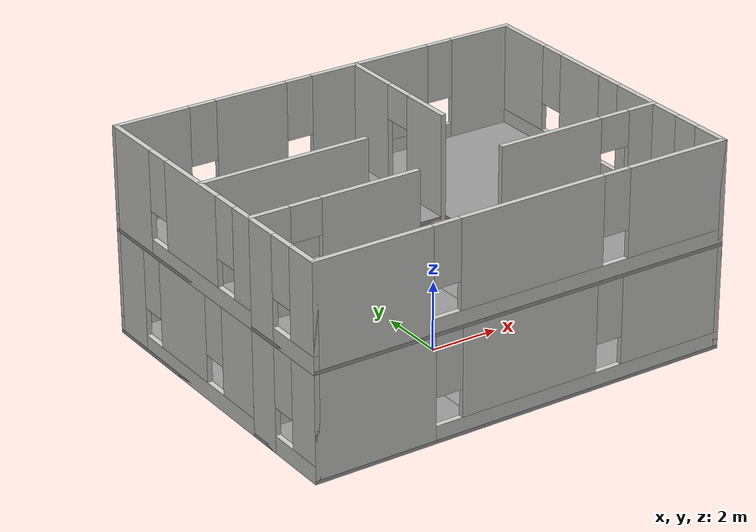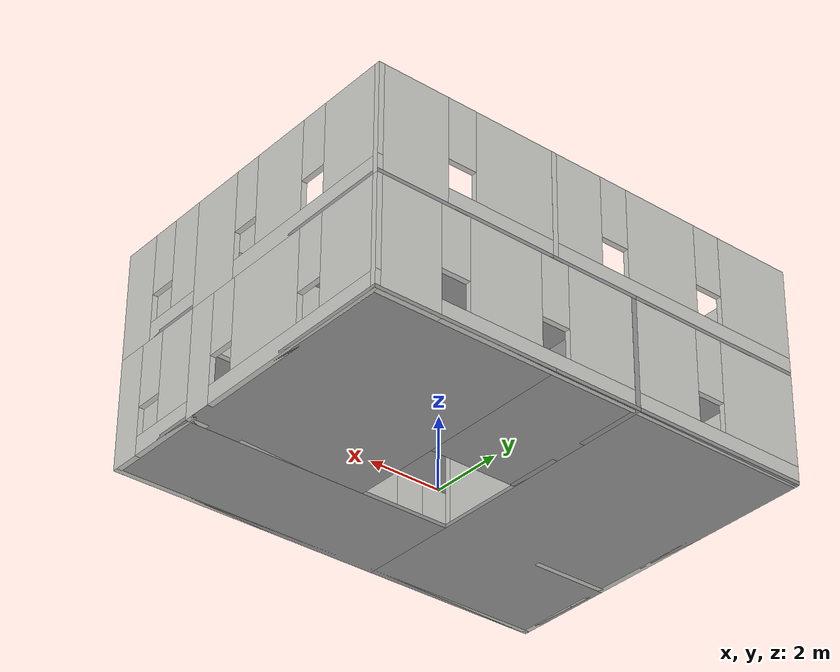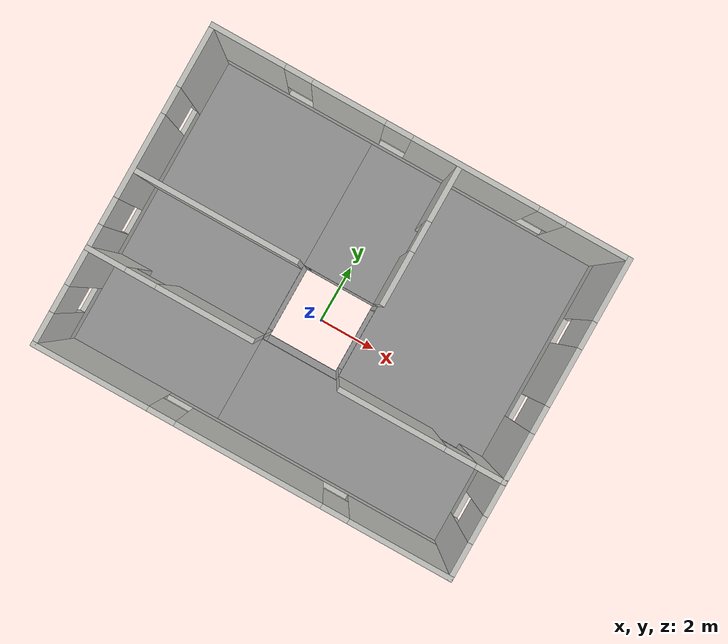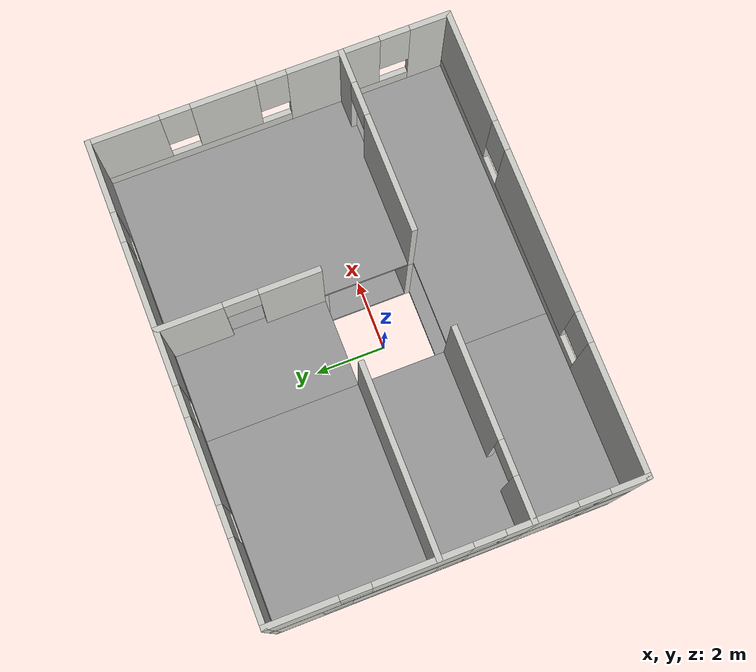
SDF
<?xml version='1.0'?>
<sdf version='1.6'>
  <model name='building_with_elevator'>
    <plugin name="model_transparency" filename="libfloor_transparency_gazebo_model_plugin.so">
      <reference_model>mobile_base</reference_model>
    </plugin>
    <pose frame=''>0 0.6995 0 0 -0 0</pose>
    <link name='Floor_0'>
      <pose frame=''>0 0 0 0 -0 0</pose>
      <visual name='Floor_0_Visual_0'>
        <pose frame=''>-3.7505 0 0.05 0 -0 0</pose>
        <geometry>
          <box>
            <size>5.001 9.60156 0.1</size>
          </box>
        </geometry>
        <material>
          <script>
            <uri>file://media/materials/scripts/gazebo.material</uri>
            <name>Gazebo/Grey</name>
          </script>
          <ambient>1 1 1 1</ambient>
        </material>
      </visual>
      <collision name='Floor_0_Collision_0'>
        <geometry>
          <box>
            <size>5.001 9.60156 0.1</size>
          </box>
        </geometry>
        <pose frame=''>-3.7505 0 0.05 0 -0 0</pose>
      </collision>
      <visual name='Floor_0_Visual_1'>
        <pose frame=''>2.5005 -3.37514 0.05 0 -0 0</pose>
        <geometry>
          <box>
            <size>7.501 2.85128 0.1</size>
          </box>
        </geometry>
        <material>
          <script>
            <uri>file://media/materials/scripts/gazebo.material</uri>
            <name>Gazebo/Grey</name>
          </script>
          <ambient>1 1 1 1</ambient>
        </material>
      </visual>
      <collision name='Floor_0_Collision_1'>
        <geometry>
          <box>
            <size>7.501 2.85128 0.1</size>
          </box>
        </geometry>
        <pose frame=''>2.5005 -3.37514 0.05 0 -0 0</pose>
      </collision>
      <visual name='Floor_0_Visual_2'>
        <pose frame=''>3.7505 1.42564 0.05 0 -0 0</pose>
        <geometry>
          <box>
            <size>5.001 6.75028 0.1</size>
          </box>
        </geometry>
        <material>
          <script>
            <uri>file://media/materials/scripts/gazebo.material</uri>
            <name>Gazebo/Grey</name>
          </script>
          <ambient>1 1 1 1</ambient>
        </material>
      </visual>
      <collision name='Floor_0_Collision_2'>
        <geometry>
          <box>
            <size>5.001 6.75028 0.1</size>
          </box>
        </geometry>
        <pose frame=''>3.7505 1.42564 0.05 0 -0 0</pose>
      </collision>
      <visual name='Floor_0_Visual_3'>
        <pose frame=''>0 2.67564 0.05 0 -0 0</pose>
        <geometry>
          <box>
            <size>2.5 4.25028 0.1</size>
          </box>
        </geometry>
        <material>
          <script>
            <uri>file://media/materials/scripts/gazebo.material</uri>
            <name>Gazebo/Grey</name>
          </script>
          <ambient>1 1 1 1</ambient>
        </material>
      </visual>
      <collision name='Floor_0_Collision_3'>
        <geometry>
          <box>
            <size>2.5 4.25028 0.1</size>
          </box>
        </geometry>
        <pose frame=''>0 2.67564 0.05 0 -0 0</pose>
      </collision>
    </link>
    <link name='Wall_1'>
      <pose frame=''>3.75 -1.8755 0 0 -0 3.14159</pose>
      <visual name='Wall_1_Visual_0'>
        <pose frame=''>-2.22551 0 1.5 0 -0 0</pose>
        <geometry>
          <box>
            <size>0.550979 0.15 3</size>
          </box>
        </geometry>
        <material>
          <script>
            <uri>file://media/materials/scripts/gazebo.material</uri>
            <name>Gazebo/CeilingTiled</name>
          </script>
          <ambient>1 1 1 1</ambient>
        </material>
      </visual>
      <collision name='Wall_1_Collision_0'>
        <geometry>
          <box>
            <size>0.550979 0.15 3</size>
          </box>
        </geometry>
        <pose frame=''>-2.22551 0 1.5 0 -0 0</pose>
      </collision>
      <visual name='Wall_1_Visual_1'>
        <pose frame=''>0.725489 0 1.5 0 -0 0</pose>
        <geometry>
          <box>
            <size>3.55102 0.15 3</size>
          </box>
        </geometry>
        <material>
          <script>
            <uri>file://media/materials/scripts/gazebo.material</uri>
            <name>Gazebo/CeilingTiled</name>
          </script>
          <ambient>1 1 1 1</ambient>
        </material>
      </visual>
      <collision name='Wall_1_Collision_1'>
        <geometry>
          <box>
            <size>3.55102 0.15 3</size>
          </box>
        </geometry>
        <pose frame=''>0.725489 0 1.5 0 -0 0</pose>
      </collision>
      <visual name='Wall_1_Visual_2'>
        <pose frame=''>-1.50002 0 2.5 0 -0 0</pose>
        <geometry>
          <box>
            <size>0.9 0.15 1</size>
          </box>
        </geometry>
        <material>
          <script>
            <uri>file://media/materials/scripts/gazebo.material</uri>
            <name>Gazebo/CeilingTiled</name>
          </script>
          <ambient>1 1 1 1</ambient>
        </material>
      </visual>
      <collision name='Wall_1_Collision_2'>
        <geometry>
          <box>
            <size>0.9 0.15 1</size>
          </box>
        </geometry>
        <pose frame=''>-1.50002 0 2.5 0 -0 0</pose>
      </collision>
    </link>
    <link name='Wall_12'>
      <pose frame=''>6.176 1.4245 0 0 -0 1.5708</pose>
      <visual name='Wall_12_Visual_0'>
        <pose frame=''>-2.95992 0 1.5 0 -0 0</pose>
        <geometry>
          <box>
            <size>0.830166 0.15 3</size>
          </box>
        </geometry>
        <material>
          <script>
            <uri>file://media/materials/scripts/gazebo.material</uri>
            <name>Gazebo/CeilingTiled</name>
          </script>
          <ambient>1 1 1 1</ambient>
        </material>
      </visual>
      <collision name='Wall_12_Collision_0'>
        <geometry>
          <box>
            <size>0.830166 0.15 3</size>
          </box>
        </geometry>
        <pose frame=''>-2.95992 0 1.5 0 -0 0</pose>
      </collision>
      <visual name='Wall_12_Visual_1'>
        <pose frame=''>0.415083 0 0.25 0 -0 0</pose>
        <geometry>
          <box>
            <size>5.91983 0.15 0.5</size>
          </box>
        </geometry>
        <material>
          <script>
            <uri>file://media/materials/scripts/gazebo.material</uri>
            <name>Gazebo/CeilingTiled</name>
          </script>
          <ambient>1 1 1 1</ambient>
        </material>
      </visual>
      <collision name='Wall_12_Collision_1'>
        <geometry>
          <box>
            <size>5.91983 0.15 0.5</size>
          </box>
        </geometry>
        <pose frame=''>0.415083 0 0.25 0 -0 0</pose>
      </collision>
      <visual name='Wall_12_Visual_2'>
        <pose frame=''>-0.543077 0 1.75 0 -0 0</pose>
        <geometry>
          <box>
            <size>2.40351 0.15 2.5</size>
          </box>
        </geometry>
        <material>
          <script>
            <uri>file://media/materials/scripts/gazebo.material</uri>
            <name>Gazebo/CeilingTiled</name>
          </script>
          <ambient>1 1 1 1</ambient>
        </material>
      </visual>
      <collision name='Wall_12_Collision_2'>
        <geometry>
          <box>
            <size>2.40351 0.15 2.5</size>
          </box>
        </geometry>
        <pose frame=''>-0.543077 0 1.75 0 -0 0</pose>
      </collision>
      <visual name='Wall_12_Visual_3'>
        <pose frame=''>2.41684 0 1.75 0 -0 0</pose>
        <geometry>
          <box>
            <size>1.91632 0.15 2.5</size>
          </box>
        </geometry>
        <material>
          <script>
            <uri>file://media/materials/scripts/gazebo.material</uri>
            <name>Gazebo/CeilingTiled</name>
          </script>
          <ambient>1 1 1 1</ambient>
        </material>
      </visual>
      <collision name='Wall_12_Collision_3'>
        <geometry>
          <box>
            <size>1.91632 0.15 2.5</size>
          </box>
        </geometry>
        <pose frame=''>2.41684 0 1.75 0 -0 0</pose>
      </collision>
      <visual name='Wall_12_Visual_4'>
        <pose frame=''>-2.14483 0 2.15 0 -0 0</pose>
        <geometry>
          <box>
            <size>0.8 0.15 1.7</size>
          </box>
        </geometry>
        <material>
          <script>
            <uri>file://media/materials/scripts/gazebo.material</uri>
            <name>Gazebo/CeilingTiled</name>
          </script>
          <ambient>1 1 1 1</ambient>
        </material>
      </visual>
      <collision name='Wall_12_Collision_4'>
        <geometry>
          <box>
            <size>0.8 0.15 1.7</size>
          </box>
        </geometry>
        <pose frame=''>-2.14483 0 2.15 0 -0 0</pose>
      </collision>
      <visual name='Wall_12_Visual_5'>
        <pose frame=''>1.05868 0 2.15 0 -0 0</pose>
        <geometry>
          <box>
            <size>0.8 0.15 1.7</size>
          </box>
        </geometry>
        <material>
          <script>
            <uri>file://media/materials/scripts/gazebo.material</uri>
            <name>Gazebo/CeilingTiled</name>
          </script>
          <ambient>1 1 1 1</ambient>
        </material>
      </visual>
      <collision name='Wall_12_Collision_5'>
        <geometry>
          <box>
            <size>0.8 0.15 1.7</size>
          </box>
        </geometry>
        <pose frame=''>1.05868 0 2.15 0 -0 0</pose>
      </collision>
    </link>
    <link name='Wall_13'>
      <pose frame=''>0 4.7245 0 0 -0 3.14159</pose>
      <visual name='Wall_13_Visual_0'>
        <pose frame=''>-5.3579 0 1.5 0 -0 0</pose>
        <geometry>
          <box>
            <size>1.7862 0.15 3</size>
          </box>
        </geometry>
        <material>
          <script>
            <uri>file://media/materials/scripts/gazebo.material</uri>
            <name>Gazebo/CeilingTiled</name>
          </script>
          <ambient>1 1 1 1</ambient>
        </material>
      </visual>
      <collision name='Wall_13_Collision_0'>
        <geometry>
          <box>
            <size>1.7862 0.15 3</size>
          </box>
        </geometry>
        <pose frame=''>-5.3579 0 1.5 0 -0 0</pose>
      </collision>
      <visual name='Wall_13_Visual_1'>
        <pose frame=''>0.893098 0 0.25 0 -0 0</pose>
        <geometry>
          <box>
            <size>10.7158 0.15 0.5</size>
          </box>
        </geometry>
        <material>
          <script>
            <uri>file://media/materials/scripts/gazebo.material</uri>
            <name>Gazebo/CeilingTiled</name>
          </script>
          <ambient>1 1 1 1</ambient>
        </material>
      </visual>
      <collision name='Wall_13_Collision_1'>
        <geometry>
          <box>
            <size>10.7158 0.15 0.5</size>
          </box>
        </geometry>
        <pose frame=''>0.893098 0 0.25 0 -0 0</pose>
      </collision>
      <visual name='Wall_13_Visual_2'>
        <pose frame=''>-2.64079 0 1.75 0 -0 0</pose>
        <geometry>
          <box>
            <size>2.04803 0.15 2.5</size>
          </box>
        </geometry>
        <material>
          <script>
            <uri>file://media/materials/scripts/gazebo.material</uri>
            <name>Gazebo/CeilingTiled</name>
          </script>
          <ambient>1 1 1 1</ambient>
        </material>
      </visual>
      <collision name='Wall_13_Collision_2'>
        <geometry>
          <box>
            <size>2.04803 0.15 2.5</size>
          </box>
        </geometry>
        <pose frame=''>-2.64079 0 1.75 0 -0 0</pose>
      </collision>
      <visual name='Wall_13_Visual_3'>
        <pose frame=''>1.14669 0 1.75 0 -0 0</pose>
        <geometry>
          <box>
            <size>3.92694 0.15 2.5</size>
          </box>
        </geometry>
        <material>
          <script>
            <uri>file://media/materials/scripts/gazebo.material</uri>
            <name>Gazebo/CeilingTiled</name>
          </script>
          <ambient>1 1 1 1</ambient>
        </material>
      </visual>
      <collision name='Wall_13_Collision_3'>
        <geometry>
          <box>
            <size>3.92694 0.15 2.5</size>
          </box>
        </geometry>
        <pose frame=''>1.14669 0 1.75 0 -0 0</pose>
      </collision>
      <visual name='Wall_13_Visual_4'>
        <pose frame=''>5.08058 0 1.75 0 -0 0</pose>
        <geometry>
          <box>
            <size>2.34084 0.15 2.5</size>
          </box>
        </geometry>
        <material>
          <script>
            <uri>file://media/materials/scripts/gazebo.material</uri>
            <name>Gazebo/CeilingTiled</name>
          </script>
          <ambient>1 1 1 1</ambient>
        </material>
      </visual>
      <collision name='Wall_13_Collision_4'>
        <geometry>
          <box>
            <size>2.34084 0.15 2.5</size>
          </box>
        </geometry>
        <pose frame=''>5.08058 0 1.75 0 -0 0</pose>
      </collision>
      <visual name='Wall_13_Visual_5'>
        <pose frame=''>-4.0648 0 2.15 0 -0 0</pose>
        <geometry>
          <box>
            <size>0.8 0.15 1.7</size>
          </box>
        </geometry>
        <material>
          <script>
            <uri>file://media/materials/scripts/gazebo.material</uri>
            <name>Gazebo/CeilingTiled</name>
          </script>
          <ambient>1 1 1 1</ambient>
        </material>
      </visual>
      <collision name='Wall_13_Collision_5'>
        <geometry>
          <box>
            <size>0.8 0.15 1.7</size>
          </box>
        </geometry>
        <pose frame=''>-4.0648 0 2.15 0 -0 0</pose>
      </collision>
      <visual name='Wall_13_Visual_6'>
        <pose frame=''>-1.21677 0 2.15 0 -0 0</pose>
        <geometry>
          <box>
            <size>0.8 0.15 1.7</size>
          </box>
        </geometry>
        <material>
          <script>
            <uri>file://media/materials/scripts/gazebo.material</uri>
            <name>Gazebo/CeilingTiled</name>
          </script>
          <ambient>1 1 1 1</ambient>
        </material>
      </visual>
      <collision name='Wall_13_Collision_6'>
        <geometry>
          <box>
            <size>0.8 0.15 1.7</size>
          </box>
        </geometry>
        <pose frame=''>-1.21677 0 2.15 0 -0 0</pose>
      </collision>
      <visual name='Wall_13_Visual_7'>
        <pose frame=''>3.51016 0 2.15 0 -0 0</pose>
        <geometry>
          <box>
            <size>0.8 0.15 1.7</size>
          </box>
        </geometry>
        <material>
          <script>
            <uri>file://media/materials/scripts/gazebo.material</uri>
            <name>Gazebo/CeilingTiled</name>
          </script>
          <ambient>1 1 1 1</ambient>
        </material>
      </visual>
      <collision name='Wall_13_Collision_7'>
        <geometry>
          <box>
            <size>0.8 0.15 1.7</size>
          </box>
        </geometry>
        <pose frame=''>3.51016 0 2.15 0 -0 0</pose>
      </collision>
    </link>
    <link name='Wall_14'>
      <pose frame=''>-6.176 1.4245 0 0 0 -1.5708</pose>
      <visual name='Wall_14_Visual_0'>
        <pose frame=''>-2.68372 0 1.5 0 -0 0</pose>
        <geometry>
          <box>
            <size>1.38232 0.15 3</size>
          </box>
        </geometry>
        <material>
          <script>
            <uri>file://media/materials/scripts/gazebo.material</uri>
            <name>Gazebo/CeilingTiled</name>
          </script>
          <ambient>1 1 1 1</ambient>
        </material>
      </visual>
      <collision name='Wall_14_Collision_0'>
        <geometry>
          <box>
            <size>1.38232 0.15 3</size>
          </box>
        </geometry>
        <pose frame=''>-2.68372 0 1.5 0 -0 0</pose>
      </collision>
      <visual name='Wall_14_Visual_1'>
        <pose frame=''>0.691162 0 0.25 0 -0 0</pose>
        <geometry>
          <box>
            <size>5.36744 0.15 0.5</size>
          </box>
        </geometry>
        <material>
          <script>
            <uri>file://media/materials/scripts/gazebo.material</uri>
            <name>Gazebo/CeilingTiled</name>
          </script>
          <ambient>1 1 1 1</ambient>
        </material>
      </visual>
      <collision name='Wall_14_Collision_1'>
        <geometry>
          <box>
            <size>5.36744 0.15 0.5</size>
          </box>
        </geometry>
        <pose frame=''>0.691162 0 0.25 0 -0 0</pose>
      </collision>
      <visual name='Wall_14_Visual_2'>
        <pose frame=''>-0.040189 0 1.75 0 -0 0</pose>
        <geometry>
          <box>
            <size>2.30474 0.15 2.5</size>
          </box>
        </geometry>
        <material>
          <script>
            <uri>file://media/materials/scripts/gazebo.material</uri>
            <name>Gazebo/CeilingTiled</name>
          </script>
          <ambient>1 1 1 1</ambient>
        </material>
      </visual>
      <collision name='Wall_14_Collision_2'>
        <geometry>
          <box>
            <size>2.30474 0.15 2.5</size>
          </box>
        </geometry>
        <pose frame=''>-0.040189 0 1.75 0 -0 0</pose>
      </collision>
      <visual name='Wall_14_Visual_3'>
        <pose frame=''>2.64353 0 1.75 0 -0 0</pose>
        <geometry>
          <box>
            <size>1.4627 0.15 2.5</size>
          </box>
        </geometry>
        <material>
          <script>
            <uri>file://media/materials/scripts/gazebo.material</uri>
            <name>Gazebo/CeilingTiled</name>
          </script>
          <ambient>1 1 1 1</ambient>
        </material>
      </visual>
      <collision name='Wall_14_Collision_3'>
        <geometry>
          <box>
            <size>1.4627 0.15 2.5</size>
          </box>
        </geometry>
        <pose frame=''>2.64353 0 1.75 0 -0 0</pose>
      </collision>
      <visual name='Wall_14_Visual_4'>
        <pose frame=''>-1.59256 0 2.15 0 -0 0</pose>
        <geometry>
          <box>
            <size>0.8 0.15 1.7</size>
          </box>
        </geometry>
        <material>
          <script>
            <uri>file://media/materials/scripts/gazebo.material</uri>
            <name>Gazebo/CeilingTiled</name>
          </script>
          <ambient>1 1 1 1</ambient>
        </material>
      </visual>
      <collision name='Wall_14_Collision_4'>
        <geometry>
          <box>
            <size>0.8 0.15 1.7</size>
          </box>
        </geometry>
        <pose frame=''>-1.59256 0 2.15 0 -0 0</pose>
      </collision>
      <visual name='Wall_14_Visual_5'>
        <pose frame=''>1.51218 0 2.15 0 -0 0</pose>
        <geometry>
          <box>
            <size>0.8 0.15 1.7</size>
          </box>
        </geometry>
        <material>
          <script>
            <uri>file://media/materials/scripts/gazebo.material</uri>
            <name>Gazebo/CeilingTiled</name>
          </script>
          <ambient>1 1 1 1</ambient>
        </material>
      </visual>
      <collision name='Wall_14_Collision_5'>
        <geometry>
          <box>
            <size>0.8 0.15 1.7</size>
          </box>
        </geometry>
        <pose frame=''>1.51218 0 2.15 0 -0 0</pose>
      </collision>
    </link>
    <link name='Wall_16'>
      <pose frame=''>-1.175 2.6755 0 0 -0 1.5708</pose>
      <visual name='Wall_16_Visual_0'>
        <pose frame=''>-1.3834 0 1.5 0 -0 0</pose>
        <geometry>
          <box>
            <size>1.48321 0.15 3</size>
          </box>
        </geometry>
        <material>
          <script>
            <uri>file://media/materials/scripts/gazebo.material</uri>
            <name>Gazebo/Grey</name>
          </script>
          <ambient>1 1 1 1</ambient>
        </material>
      </visual>
      <collision name='Wall_16_Collision_0'>
        <geometry>
          <box>
            <size>1.48321 0.15 3</size>
          </box>
        </geometry>
        <pose frame=''>-1.3834 0 1.5 0 -0 0</pose>
      </collision>
      <visual name='Wall_16_Visual_1'>
        <pose frame=''>1.1916 0 1.5 0 -0 0</pose>
        <geometry>
          <box>
            <size>1.86679 0.15 3</size>
          </box>
        </geometry>
        <material>
          <script>
            <uri>file://media/materials/scripts/gazebo.material</uri>
            <name>Gazebo/Grey</name>
          </script>
          <ambient>1 1 1 1</ambient>
        </material>
      </visual>
      <collision name='Wall_16_Collision_1'>
        <geometry>
          <box>
            <size>1.86679 0.15 3</size>
          </box>
        </geometry>
        <pose frame=''>1.1916 0 1.5 0 -0 0</pose>
      </collision>
      <visual name='Wall_16_Visual_2'>
        <pose frame=''>-0.191795 0 2.5 0 -0 0</pose>
        <geometry>
          <box>
            <size>0.9 0.15 1</size>
          </box>
        </geometry>
        <material>
          <script>
            <uri>file://media/materials/scripts/gazebo.material</uri>
            <name>Gazebo/Grey</name>
          </script>
          <ambient>1 1 1 1</ambient>
        </material>
      </visual>
      <collision name='Wall_16_Collision_2'>
        <geometry>
          <box>
            <size>0.9 0.15 1</size>
          </box>
        </geometry>
        <pose frame=''>-0.191795 0 2.5 0 -0 0</pose>
      </collision>
    </link>
    <link name='Wall_18'>
      <collision name='Wall_18_Collision'>
        <geometry>
          <box>
            <size>5 0.15 3</size>
          </box>
        </geometry>
        <pose frame=''>0 0 1.5 0 -0 0</pose>
      </collision>
      <visual name='Wall_18_Visual'>
        <pose frame=''>0 0 1.5 0 -0 0</pose>
        <geometry>
          <box>
            <size>5 0.15 3</size>
          </box>
        </geometry>
        <material>
          <script>
            <uri>file://media/materials/scripts/gazebo.material</uri>
            <name>Gazebo/CeilingTiled</name>
          </script>
          <ambient>1 1 1 1</ambient>
        </material>
      </visual>
      <pose frame=''>3.748 0.4825 0 0 -0 0</pose>
    </link>
    <link name='Floor_1'>
      <pose frame=''>0 0 3 0 -0 0</pose>
      <visual name='Floor_1_Visual_0'>
        <pose frame=''>-3.7505 0 0.05 0 -0 0</pose>
        <geometry>
          <box>
            <size>5.001 9.60156 0.1</size>
          </box>
        </geometry>
        <material>
          <script>
            <uri>file://media/materials/scripts/gazebo.material</uri>
            <name>Gazebo/Grey</name>
          </script>
          <ambient>1 1 1 1</ambient>
        </material>
      </visual>
      <collision name='Floor_1_Collision_0'>
        <geometry>
          <box>
            <size>5.001 9.60156 0.1</size>
          </box>
        </geometry>
        <pose frame=''>-3.7505 0 0.05 0 -0 0</pose>
      </collision>
      <visual name='Floor_1_Visual_1'>
        <pose frame=''>2.5005 -3.37514 0.05 0 -0 0</pose>
        <geometry>
          <box>
            <size>7.501 2.85128 0.1</size>
          </box>
        </geometry>
        <material>
          <script>
            <uri>file://media/materials/scripts/gazebo.material</uri>
            <name>Gazebo/Grey</name>
          </script>
          <ambient>1 1 1 1</ambient>
        </material>
      </visual>
      <collision name='Floor_1_Collision_1'>
        <geometry>
          <box>
            <size>7.501 2.85128 0.1</size>
          </box>
        </geometry>
        <pose frame=''>2.5005 -3.37514 0.05 0 -0 0</pose>
      </collision>
      <visual name='Floor_1_Visual_2'>
        <pose frame=''>3.7505 1.42564 0.05 0 -0 0</pose>
        <geometry>
          <box>
            <size>5.001 6.75028 0.1</size>
          </box>
        </geometry>
        <material>
          <script>
            <uri>file://media/materials/scripts/gazebo.material</uri>
            <name>Gazebo/Grey</name>
          </script>
          <ambient>1 1 1 1</ambient>
        </material>
      </visual>
      <collision name='Floor_1_Collision_2'>
        <geometry>
          <box>
            <size>5.001 6.75028 0.1</size>
          </box>
        </geometry>
        <pose frame=''>3.7505 1.42564 0.05 0 -0 0</pose>
      </collision>
      <visual name='Floor_1_Visual_3'>
        <pose frame=''>0 2.67564 0.05 0 -0 0</pose>
        <geometry>
          <box>
            <size>2.5 4.25028 0.1</size>
          </box>
        </geometry>
        <material>
          <script>
            <uri>file://media/materials/scripts/gazebo.material</uri>
            <name>Gazebo/Grey</name>
          </script>
          <ambient>1 1 1 1</ambient>
        </material>
      </visual>
      <collision name='Floor_1_Collision_3'>
        <geometry>
          <box>
            <size>2.5 4.25028 0.1</size>
          </box>
        </geometry>
        <pose frame=''>0 2.67564 0.05 0 -0 0</pose>
      </collision>
    </link>
    <link name='Wall_21'>
      <pose frame=''>3.75 -1.8755 3 0 -0 3.14159</pose>
      <visual name='Wall_21_Visual_0'>
        <pose frame=''>-2.03547 0 1.5 0 -0 0</pose>
        <geometry>
          <box>
            <size>0.931051 0.15 3</size>
          </box>
        </geometry>
        <material>
          <script>
            <uri>file://media/materials/scripts/gazebo.material</uri>
            <name>Gazebo/CeilingTiled</name>
          </script>
          <ambient>1 1 1 1</ambient>
        </material>
      </visual>
      <collision name='Wall_21_Collision_0'>
        <geometry>
          <box>
            <size>0.931051 0.15 3</size>
          </box>
        </geometry>
        <pose frame=''>-2.03547 0 1.5 0 -0 0</pose>
      </collision>
      <visual name='Wall_21_Visual_1'>
        <pose frame=''>0.915525 0 1.5 0 -0 0</pose>
        <geometry>
          <box>
            <size>3.17095 0.15 3</size>
          </box>
        </geometry>
        <material>
          <script>
            <uri>file://media/materials/scripts/gazebo.material</uri>
            <name>Gazebo/CeilingTiled</name>
          </script>
          <ambient>1 1 1 1</ambient>
        </material>
      </visual>
      <collision name='Wall_21_Collision_1'>
        <geometry>
          <box>
            <size>3.17095 0.15 3</size>
          </box>
        </geometry>
        <pose frame=''>0.915525 0 1.5 0 -0 0</pose>
      </collision>
      <visual name='Wall_21_Visual_2'>
        <pose frame=''>-1.11995 0 2.5 0 -0 0</pose>
        <geometry>
          <box>
            <size>0.9 0.15 1</size>
          </box>
        </geometry>
        <material>
          <script>
            <uri>file://media/materials/scripts/gazebo.material</uri>
            <name>Gazebo/CeilingTiled</name>
          </script>
          <ambient>1 1 1 1</ambient>
        </material>
      </visual>
      <collision name='Wall_21_Collision_2'>
        <geometry>
          <box>
            <size>0.9 0.15 1</size>
          </box>
        </geometry>
        <pose frame=''>-1.11995 0 2.5 0 -0 0</pose>
      </collision>
    </link>
    <link name='Wall_22'>
      <pose frame=''>-3.751 -1.8755 3 0 -0 3.14159</pose>
      <visual name='Wall_22_Visual_0'>
        <pose frame=''>-1.04559 0 1.5 0 -0 0</pose>
        <geometry>
          <box>
            <size>2.90882 0.15 3</size>
          </box>
        </geometry>
        <material>
          <script>
            <uri>file://media/materials/scripts/gazebo.material</uri>
            <name>Gazebo/CeilingTiled</name>
          </script>
          <ambient>1 1 1 1</ambient>
        </material>
      </visual>
      <collision name='Wall_22_Collision_0'>
        <geometry>
          <box>
            <size>2.90882 0.15 3</size>
          </box>
        </geometry>
        <pose frame=''>-1.04559 0 1.5 0 -0 0</pose>
      </collision>
      <visual name='Wall_22_Visual_1'>
        <pose frame=''>1.90441 0 1.5 0 -0 0</pose>
        <geometry>
          <box>
            <size>1.19118 0.15 3</size>
          </box>
        </geometry>
        <material>
          <script>
            <uri>file://media/materials/scripts/gazebo.material</uri>
            <name>Gazebo/CeilingTiled</name>
          </script>
          <ambient>1 1 1 1</ambient>
        </material>
      </visual>
      <collision name='Wall_22_Collision_1'>
        <geometry>
          <box>
            <size>1.19118 0.15 3</size>
          </box>
        </geometry>
        <pose frame=''>1.90441 0 1.5 0 -0 0</pose>
      </collision>
      <visual name='Wall_22_Visual_2'>
        <pose frame=''>0.858818 0 2.5 0 -0 0</pose>
        <geometry>
          <box>
            <size>0.9 0.15 1</size>
          </box>
        </geometry>
        <material>
          <script>
            <uri>file://media/materials/scripts/gazebo.material</uri>
            <name>Gazebo/CeilingTiled</name>
          </script>
          <ambient>1 1 1 1</ambient>
        </material>
      </visual>
      <collision name='Wall_22_Collision_2'>
        <geometry>
          <box>
            <size>0.9 0.15 1</size>
          </box>
        </geometry>
        <pose frame=''>0.858818 0 2.5 0 -0 0</pose>
      </collision>
    </link>
    <link name='Wall_23'>
      <pose frame=''>-6.176 -3.3005 3 0 0 -1.5708</pose>
      <visual name='Wall_23_Visual_0'>
        <pose frame=''>-0.914344 0 1.5 0 -0 0</pose>
        <geometry>
          <box>
            <size>1.17131 0.15 3</size>
          </box>
        </geometry>
        <material>
          <script>
            <uri>file://media/materials/scripts/gazebo.material</uri>
            <name>Gazebo/CeilingTiled</name>
          </script>
          <ambient>1 1 1 1</ambient>
        </material>
      </visual>
      <collision name='Wall_23_Collision_0'>
        <geometry>
          <box>
            <size>1.17131 0.15 3</size>
          </box>
        </geometry>
        <pose frame=''>-0.914344 0 1.5 0 -0 0</pose>
      </collision>
      <visual name='Wall_23_Visual_1'>
        <pose frame=''>0.585656 0 0.25 0 -0 0</pose>
        <geometry>
          <box>
            <size>1.82869 0.15 0.5</size>
          </box>
        </geometry>
        <material>
          <script>
            <uri>file://media/materials/scripts/gazebo.material</uri>
            <name>Gazebo/CeilingTiled</name>
          </script>
          <ambient>1 1 1 1</ambient>
        </material>
      </visual>
      <collision name='Wall_23_Collision_1'>
        <geometry>
          <box>
            <size>1.82869 0.15 0.5</size>
          </box>
        </geometry>
        <pose frame=''>0.585656 0 0.25 0 -0 0</pose>
      </collision>
      <visual name='Wall_23_Visual_2'>
        <pose frame=''>0.985656 0 1.75 0 -0 0</pose>
        <geometry>
          <box>
            <size>1.02869 0.15 2.5</size>
          </box>
        </geometry>
        <material>
          <script>
            <uri>file://media/materials/scripts/gazebo.material</uri>
            <name>Gazebo/CeilingTiled</name>
          </script>
          <ambient>1 1 1 1</ambient>
        </material>
      </visual>
      <collision name='Wall_23_Collision_2'>
        <geometry>
          <box>
            <size>1.02869 0.15 2.5</size>
          </box>
        </geometry>
        <pose frame=''>0.985656 0 1.75 0 -0 0</pose>
      </collision>
      <visual name='Wall_23_Visual_3'>
        <pose frame=''>0.071312 0 2.15 0 -0 0</pose>
        <geometry>
          <box>
            <size>0.8 0.15 1.7</size>
          </box>
        </geometry>
        <material>
          <script>
            <uri>file://media/materials/scripts/gazebo.material</uri>
            <name>Gazebo/CeilingTiled</name>
          </script>
          <ambient>1 1 1 1</ambient>
        </material>
      </visual>
      <collision name='Wall_23_Collision_3'>
        <geometry>
          <box>
            <size>0.8 0.15 1.7</size>
          </box>
        </geometry>
        <pose frame=''>0.071312 0 2.15 0 -0 0</pose>
      </collision>
    </link>
    <link name='Wall_24'>
      <pose frame=''>0 -4.7255 3 0 -0 0</pose>
      <visual name='Wall_24_Visual_0'>
        <pose frame=''>-4.52369 0 1.5 0 -0 0</pose>
        <geometry>
          <box>
            <size>3.45462 0.15 3</size>
          </box>
        </geometry>
        <material>
          <script>
            <uri>file://media/materials/scripts/gazebo.material</uri>
            <name>Gazebo/CeilingTiled</name>
          </script>
          <ambient>1 1 1 1</ambient>
        </material>
      </visual>
      <collision name='Wall_24_Collision_0'>
        <geometry>
          <box>
            <size>3.45462 0.15 3</size>
          </box>
        </geometry>
        <pose frame=''>-4.52369 0 1.5 0 -0 0</pose>
      </collision>
      <visual name='Wall_24_Visual_1'>
        <pose frame=''>1.72731 0 0.25 0 -0 0</pose>
        <geometry>
          <box>
            <size>9.04738 0.15 0.5</size>
          </box>
        </geometry>
        <material>
          <script>
            <uri>file://media/materials/scripts/gazebo.material</uri>
            <name>Gazebo/CeilingTiled</name>
          </script>
          <ambient>1 1 1 1</ambient>
        </material>
      </visual>
      <collision name='Wall_24_Collision_1'>
        <geometry>
          <box>
            <size>9.04738 0.15 0.5</size>
          </box>
        </geometry>
        <pose frame=''>1.72731 0 0.25 0 -0 0</pose>
      </collision>
      <visual name='Wall_24_Visual_2'>
        <pose frame=''>0.174782 0 1.75 0 -0 0</pose>
        <geometry>
          <box>
            <size>4.34233 0.15 2.5</size>
          </box>
        </geometry>
        <material>
          <script>
            <uri>file://media/materials/scripts/gazebo.material</uri>
            <name>Gazebo/CeilingTiled</name>
          </script>
          <ambient>1 1 1 1</ambient>
        </material>
      </visual>
      <collision name='Wall_24_Collision_2'>
        <geometry>
          <box>
            <size>4.34233 0.15 2.5</size>
          </box>
        </geometry>
        <pose frame=''>0.174782 0 1.75 0 -0 0</pose>
      </collision>
      <visual name='Wall_24_Visual_3'>
        <pose frame=''>4.69847 0 1.75 0 -0 0</pose>
        <geometry>
          <box>
            <size>3.10506 0.15 2.5</size>
          </box>
        </geometry>
        <material>
          <script>
            <uri>file://media/materials/scripts/gazebo.material</uri>
            <name>Gazebo/CeilingTiled</name>
          </script>
          <ambient>1 1 1 1</ambient>
        </material>
      </visual>
      <collision name='Wall_24_Collision_3'>
        <geometry>
          <box>
            <size>3.10506 0.15 2.5</size>
          </box>
        </geometry>
        <pose frame=''>4.69847 0 1.75 0 -0 0</pose>
      </collision>
      <visual name='Wall_24_Visual_4'>
        <pose frame=''>-2.39638 0 2.15 0 -0 0</pose>
        <geometry>
          <box>
            <size>0.8 0.15 1.7</size>
          </box>
        </geometry>
        <material>
          <script>
            <uri>file://media/materials/scripts/gazebo.material</uri>
            <name>Gazebo/CeilingTiled</name>
          </script>
          <ambient>1 1 1 1</ambient>
        </material>
      </visual>
      <collision name='Wall_24_Collision_4'>
        <geometry>
          <box>
            <size>0.8 0.15 1.7</size>
          </box>
        </geometry>
        <pose frame=''>-2.39638 0 2.15 0 -0 0</pose>
      </collision>
      <visual name='Wall_24_Visual_5'>
        <pose frame=''>2.74594 0 2.15 0 -0 0</pose>
        <geometry>
          <box>
            <size>0.8 0.15 1.7</size>
          </box>
        </geometry>
        <material>
          <script>
            <uri>file://media/materials/scripts/gazebo.material</uri>
            <name>Gazebo/CeilingTiled</name>
          </script>
          <ambient>1 1 1 1</ambient>
        </material>
      </visual>
      <collision name='Wall_24_Collision_5'>
        <geometry>
          <box>
            <size>0.8 0.15 1.7</size>
          </box>
        </geometry>
        <pose frame=''>2.74594 0 2.15 0 -0 0</pose>
      </collision>
    </link>
    <link name='Wall_25'>
      <pose frame=''>6.176 -3.3005 3 0 -0 1.5708</pose>
      <visual name='Wall_25_Visual_0'>
        <pose frame=''>-0.94094 0 1.5 0 -0 0</pose>
        <geometry>
          <box>
            <size>1.11812 0.15 3</size>
          </box>
        </geometry>
        <material>
          <script>
            <uri>file://media/materials/scripts/gazebo.material</uri>
            <name>Gazebo/CeilingTiled</name>
          </script>
          <ambient>1 1 1 1</ambient>
        </material>
      </visual>
      <collision name='Wall_25_Collision_0'>
        <geometry>
          <box>
            <size>1.11812 0.15 3</size>
          </box>
        </geometry>
        <pose frame=''>-0.94094 0 1.5 0 -0 0</pose>
      </collision>
      <visual name='Wall_25_Visual_1'>
        <pose frame=''>0.55906 0 0.25 0 -0 0</pose>
        <geometry>
          <box>
            <size>1.88188 0.15 0.5</size>
          </box>
        </geometry>
        <material>
          <script>
            <uri>file://media/materials/scripts/gazebo.material</uri>
            <name>Gazebo/CeilingTiled</name>
          </script>
          <ambient>1 1 1 1</ambient>
        </material>
      </visual>
      <collision name='Wall_25_Collision_1'>
        <geometry>
          <box>
            <size>1.88188 0.15 0.5</size>
          </box>
        </geometry>
        <pose frame=''>0.55906 0 0.25 0 -0 0</pose>
      </collision>
      <visual name='Wall_25_Visual_2'>
        <pose frame=''>0.95906 0 1.75 0 -0 0</pose>
        <geometry>
          <box>
            <size>1.08188 0.15 2.5</size>
          </box>
        </geometry>
        <material>
          <script>
            <uri>file://media/materials/scripts/gazebo.material</uri>
            <name>Gazebo/CeilingTiled</name>
          </script>
          <ambient>1 1 1 1</ambient>
        </material>
      </visual>
      <collision name='Wall_25_Collision_2'>
        <geometry>
          <box>
            <size>1.08188 0.15 2.5</size>
          </box>
        </geometry>
        <pose frame=''>0.95906 0 1.75 0 -0 0</pose>
      </collision>
      <visual name='Wall_25_Visual_3'>
        <pose frame=''>0.018119 0 2.15 0 -0 0</pose>
        <geometry>
          <box>
            <size>0.8 0.15 1.7</size>
          </box>
        </geometry>
        <material>
          <script>
            <uri>file://media/materials/scripts/gazebo.material</uri>
            <name>Gazebo/CeilingTiled</name>
          </script>
          <ambient>1 1 1 1</ambient>
        </material>
      </visual>
      <collision name='Wall_25_Collision_3'>
        <geometry>
          <box>
            <size>0.8 0.15 1.7</size>
          </box>
        </geometry>
        <pose frame=''>0.018119 0 2.15 0 -0 0</pose>
      </collision>
    </link>
    <link name='Wall_26'>
      <pose frame=''>6.176 1.4245 3 0 -0 1.5708</pose>
      <visual name='Wall_26_Visual_0'>
        <pose frame=''>-2.60881 0 1.5 0 -0 0</pose>
        <geometry>
          <box>
            <size>1.53238 0.15 3</size>
          </box>
        </geometry>
        <material>
          <script>
            <uri>file://media/materials/scripts/gazebo.material</uri>
            <name>Gazebo/CeilingTiled</name>
          </script>
          <ambient>1 1 1 1</ambient>
        </material>
      </visual>
      <collision name='Wall_26_Collision_0'>
        <geometry>
          <box>
            <size>1.53238 0.15 3</size>
          </box>
        </geometry>
        <pose frame=''>-2.60881 0 1.5 0 -0 0</pose>
      </collision>
      <visual name='Wall_26_Visual_1'>
        <pose frame=''>0.766189 0 0.25 0 -0 0</pose>
        <geometry>
          <box>
            <size>5.21762 0.15 0.5</size>
          </box>
        </geometry>
        <material>
          <script>
            <uri>file://media/materials/scripts/gazebo.material</uri>
            <name>Gazebo/CeilingTiled</name>
          </script>
          <ambient>1 1 1 1</ambient>
        </material>
      </visual>
      <collision name='Wall_26_Collision_1'>
        <geometry>
          <box>
            <size>5.21762 0.15 0.5</size>
          </box>
        </geometry>
        <pose frame=''>0.766189 0 0.25 0 -0 0</pose>
      </collision>
      <visual name='Wall_26_Visual_2'>
        <pose frame=''>-0.190577 0 1.75 0 -0 0</pose>
        <geometry>
          <box>
            <size>1.70409 0.15 2.5</size>
          </box>
        </geometry>
        <material>
          <script>
            <uri>file://media/materials/scripts/gazebo.material</uri>
            <name>Gazebo/CeilingTiled</name>
          </script>
          <ambient>1 1 1 1</ambient>
        </material>
      </visual>
      <collision name='Wall_26_Collision_2'>
        <geometry>
          <box>
            <size>1.70409 0.15 2.5</size>
          </box>
        </geometry>
        <pose frame=''>-0.190577 0 1.75 0 -0 0</pose>
      </collision>
      <visual name='Wall_26_Visual_3'>
        <pose frame=''>2.41823 0 1.75 0 -0 0</pose>
        <geometry>
          <box>
            <size>1.91353 0.15 2.5</size>
          </box>
        </geometry>
        <material>
          <script>
            <uri>file://media/materials/scripts/gazebo.material</uri>
            <name>Gazebo/CeilingTiled</name>
          </script>
          <ambient>1 1 1 1</ambient>
        </material>
      </visual>
      <collision name='Wall_26_Collision_3'>
        <geometry>
          <box>
            <size>1.91353 0.15 2.5</size>
          </box>
        </geometry>
        <pose frame=''>2.41823 0 1.75 0 -0 0</pose>
      </collision>
      <visual name='Wall_26_Visual_4'>
        <pose frame=''>-1.44262 0 2.15 0 -0 0</pose>
        <geometry>
          <box>
            <size>0.8 0.15 1.7</size>
          </box>
        </geometry>
        <material>
          <script>
            <uri>file://media/materials/scripts/gazebo.material</uri>
            <name>Gazebo/CeilingTiled</name>
          </script>
          <ambient>1 1 1 1</ambient>
        </material>
      </visual>
      <collision name='Wall_26_Collision_4'>
        <geometry>
          <box>
            <size>0.8 0.15 1.7</size>
          </box>
        </geometry>
        <pose frame=''>-1.44262 0 2.15 0 -0 0</pose>
      </collision>
      <visual name='Wall_26_Visual_5'>
        <pose frame=''>1.06147 0 2.15 0 -0 0</pose>
        <geometry>
          <box>
            <size>0.8 0.15 1.7</size>
          </box>
        </geometry>
        <material>
          <script>
            <uri>file://media/materials/scripts/gazebo.material</uri>
            <name>Gazebo/CeilingTiled</name>
          </script>
          <ambient>1 1 1 1</ambient>
        </material>
      </visual>
      <collision name='Wall_26_Collision_5'>
        <geometry>
          <box>
            <size>0.8 0.15 1.7</size>
          </box>
        </geometry>
        <pose frame=''>1.06147 0 2.15 0 -0 0</pose>
      </collision>
    </link>
    <link name='Wall_27'>
      <pose frame=''>0 4.7245 3 0 -0 3.14159</pose>
      <visual name='Wall_27_Visual_0'>
        <pose frame=''>-5.2686 0 1.5 0 -0 0</pose>
        <geometry>
          <box>
            <size>1.9648 0.15 3</size>
          </box>
        </geometry>
        <material>
          <script>
            <uri>file://media/materials/scripts/gazebo.material</uri>
            <name>Gazebo/CeilingTiled</name>
          </script>
          <ambient>1 1 1 1</ambient>
        </material>
      </visual>
      <collision name='Wall_27_Collision_0'>
        <geometry>
          <box>
            <size>1.9648 0.15 3</size>
          </box>
        </geometry>
        <pose frame=''>-5.2686 0 1.5 0 -0 0</pose>
      </collision>
      <visual name='Wall_27_Visual_1'>
        <pose frame=''>0.9824 0 0.25 0 -0 0</pose>
        <geometry>
          <box>
            <size>10.5372 0.15 0.5</size>
          </box>
        </geometry>
        <material>
          <script>
            <uri>file://media/materials/scripts/gazebo.material</uri>
            <name>Gazebo/CeilingTiled</name>
          </script>
          <ambient>1 1 1 1</ambient>
        </material>
      </visual>
      <collision name='Wall_27_Collision_1'>
        <geometry>
          <box>
            <size>10.5372 0.15 0.5</size>
          </box>
        </geometry>
        <pose frame=''>0.9824 0 0.25 0 -0 0</pose>
      </collision>
      <visual name='Wall_27_Visual_2'>
        <pose frame=''>-1.61687 0 1.75 0 -0 0</pose>
        <geometry>
          <box>
            <size>3.73866 0.15 2.5</size>
          </box>
        </geometry>
        <material>
          <script>
            <uri>file://media/materials/scripts/gazebo.material</uri>
            <name>Gazebo/CeilingTiled</name>
          </script>
          <ambient>1 1 1 1</ambient>
        </material>
      </visual>
      <collision name='Wall_27_Collision_2'>
        <geometry>
          <box>
            <size>3.73866 0.15 2.5</size>
          </box>
        </geometry>
        <pose frame=''>-1.61687 0 1.75 0 -0 0</pose>
      </collision>
      <visual name='Wall_27_Visual_3'>
        <pose frame=''>2.13926 0 1.75 0 -0 0</pose>
        <geometry>
          <box>
            <size>2.17361 0.15 2.5</size>
          </box>
        </geometry>
        <material>
          <script>
            <uri>file://media/materials/scripts/gazebo.material</uri>
            <name>Gazebo/CeilingTiled</name>
          </script>
          <ambient>1 1 1 1</ambient>
        </material>
      </visual>
      <collision name='Wall_27_Collision_3'>
        <geometry>
          <box>
            <size>2.17361 0.15 2.5</size>
          </box>
        </geometry>
        <pose frame=''>2.13926 0 1.75 0 -0 0</pose>
      </collision>
      <visual name='Wall_27_Visual_4'>
        <pose frame=''>5.13853 0 1.75 0 -0 0</pose>
        <geometry>
          <box>
            <size>2.22493 0.15 2.5</size>
          </box>
        </geometry>
        <material>
          <script>
            <uri>file://media/materials/scripts/gazebo.material</uri>
            <name>Gazebo/CeilingTiled</name>
          </script>
          <ambient>1 1 1 1</ambient>
        </material>
      </visual>
      <collision name='Wall_27_Collision_4'>
        <geometry>
          <box>
            <size>2.22493 0.15 2.5</size>
          </box>
        </geometry>
        <pose frame=''>5.13853 0 1.75 0 -0 0</pose>
      </collision>
      <visual name='Wall_27_Visual_5'>
        <pose frame=''>-3.8862 0 2.15 0 -0 0</pose>
        <geometry>
          <box>
            <size>0.8 0.15 1.7</size>
          </box>
        </geometry>
        <material>
          <script>
            <uri>file://media/materials/scripts/gazebo.material</uri>
            <name>Gazebo/CeilingTiled</name>
          </script>
          <ambient>1 1 1 1</ambient>
        </material>
      </visual>
      <collision name='Wall_27_Collision_5'>
        <geometry>
          <box>
            <size>0.8 0.15 1.7</size>
          </box>
        </geometry>
        <pose frame=''>-3.8862 0 2.15 0 -0 0</pose>
      </collision>
      <visual name='Wall_27_Visual_6'>
        <pose frame=''>0.652462 0 2.15 0 -0 0</pose>
        <geometry>
          <box>
            <size>0.8 0.15 1.7</size>
          </box>
        </geometry>
        <material>
          <script>
            <uri>file://media/materials/scripts/gazebo.material</uri>
            <name>Gazebo/CeilingTiled</name>
          </script>
          <ambient>1 1 1 1</ambient>
        </material>
      </visual>
      <collision name='Wall_27_Collision_6'>
        <geometry>
          <box>
            <size>0.8 0.15 1.7</size>
          </box>
        </geometry>
        <pose frame=''>0.652462 0 2.15 0 -0 0</pose>
      </collision>
      <visual name='Wall_27_Visual_7'>
        <pose frame=''>3.62607 0 2.15 0 -0 0</pose>
        <geometry>
          <box>
            <size>0.8 0.15 1.7</size>
          </box>
        </geometry>
        <material>
          <script>
            <uri>file://media/materials/scripts/gazebo.material</uri>
            <name>Gazebo/CeilingTiled</name>
          </script>
          <ambient>1 1 1 1</ambient>
        </material>
      </visual>
      <collision name='Wall_27_Collision_7'>
        <geometry>
          <box>
            <size>0.8 0.15 1.7</size>
          </box>
        </geometry>
        <pose frame=''>3.62607 0 2.15 0 -0 0</pose>
      </collision>
    </link>
    <link name='Wall_28'>
      <pose frame=''>-6.176 1.4245 3 0 0 -1.5708</pose>
      <visual name='Wall_28_Visual_0'>
        <pose frame=''>-2.42941 0 1.5 0 -0 0</pose>
        <geometry>
          <box>
            <size>1.89117 0.15 3</size>
          </box>
        </geometry>
        <material>
          <script>
            <uri>file://media/materials/scripts/gazebo.material</uri>
            <name>Gazebo/CeilingTiled</name>
          </script>
          <ambient>1 1 1 1</ambient>
        </material>
      </visual>
      <collision name='Wall_28_Collision_0'>
        <geometry>
          <box>
            <size>1.89117 0.15 3</size>
          </box>
        </geometry>
        <pose frame=''>-2.42941 0 1.5 0 -0 0</pose>
      </collision>
      <visual name='Wall_28_Visual_1'>
        <pose frame=''>0.945587 0 0.25 0 -0 0</pose>
        <geometry>
          <box>
            <size>4.85883 0.15 0.5</size>
          </box>
        </geometry>
        <material>
          <script>
            <uri>file://media/materials/scripts/gazebo.material</uri>
            <name>Gazebo/CeilingTiled</name>
          </script>
          <ambient>1 1 1 1</ambient>
        </material>
      </visual>
      <collision name='Wall_28_Collision_1'>
        <geometry>
          <box>
            <size>4.85883 0.15 0.5</size>
          </box>
        </geometry>
        <pose frame=''>0.945587 0 0.25 0 -0 0</pose>
      </collision>
      <visual name='Wall_28_Visual_2'>
        <pose frame=''>0.559483 0 1.75 0 -0 0</pose>
        <geometry>
          <box>
            <size>2.48662 0.15 2.5</size>
          </box>
        </geometry>
        <material>
          <script>
            <uri>file://media/materials/scripts/gazebo.material</uri>
            <name>Gazebo/CeilingTiled</name>
          </script>
          <ambient>1 1 1 1</ambient>
        </material>
      </visual>
      <collision name='Wall_28_Collision_2'>
        <geometry>
          <box>
            <size>2.48662 0.15 2.5</size>
          </box>
        </geometry>
        <pose frame=''>0.559483 0 1.75 0 -0 0</pose>
      </collision>
      <visual name='Wall_28_Visual_3'>
        <pose frame=''>2.9889 0 1.75 0 -0 0</pose>
        <geometry>
          <box>
            <size>0.772209 0.15 2.5</size>
          </box>
        </geometry>
        <material>
          <script>
            <uri>file://media/materials/scripts/gazebo.material</uri>
            <name>Gazebo/CeilingTiled</name>
          </script>
          <ambient>1 1 1 1</ambient>
        </material>
      </visual>
      <collision name='Wall_28_Collision_3'>
        <geometry>
          <box>
            <size>0.772209 0.15 2.5</size>
          </box>
        </geometry>
        <pose frame=''>2.9889 0 1.75 0 -0 0</pose>
      </collision>
      <visual name='Wall_28_Visual_4'>
        <pose frame=''>-1.08383 0 2.15 0 -0 0</pose>
        <geometry>
          <box>
            <size>0.8 0.15 1.7</size>
          </box>
        </geometry>
        <material>
          <script>
            <uri>file://media/materials/scripts/gazebo.material</uri>
            <name>Gazebo/CeilingTiled</name>
          </script>
          <ambient>1 1 1 1</ambient>
        </material>
      </visual>
      <collision name='Wall_28_Collision_4'>
        <geometry>
          <box>
            <size>0.8 0.15 1.7</size>
          </box>
        </geometry>
        <pose frame=''>-1.08383 0 2.15 0 -0 0</pose>
      </collision>
      <visual name='Wall_28_Visual_5'>
        <pose frame=''>2.20279 0 2.15 0 -0 0</pose>
        <geometry>
          <box>
            <size>0.8 0.15 1.7</size>
          </box>
        </geometry>
        <material>
          <script>
            <uri>file://media/materials/scripts/gazebo.material</uri>
            <name>Gazebo/CeilingTiled</name>
          </script>
          <ambient>1 1 1 1</ambient>
        </material>
      </visual>
      <collision name='Wall_28_Collision_5'>
        <geometry>
          <box>
            <size>0.8 0.15 1.7</size>
          </box>
        </geometry>
        <pose frame=''>2.20279 0 2.15 0 -0 0</pose>
      </collision>
    </link>
    <link name='Wall_29'>
      <pose frame=''>1.175 2.6755 3 0 -0 1.5708</pose>
      <visual name='Wall_29_Visual_0'>
        <pose frame=''>-1.32638 0 1.5 0 -0 0</pose>
        <geometry>
          <box>
            <size>1.59725 0.15 3</size>
          </box>
        </geometry>
        <material>
          <script>
            <uri>file://media/materials/scripts/gazebo.material</uri>
            <name>Gazebo/CeilingTiled</name>
          </script>
          <ambient>1 1 1 1</ambient>
        </material>
      </visual>
      <collision name='Wall_29_Collision_0'>
        <geometry>
          <box>
            <size>1.59725 0.15 3</size>
          </box>
        </geometry>
        <pose frame=''>-1.32638 0 1.5 0 -0 0</pose>
      </collision>
      <visual name='Wall_29_Visual_1'>
        <pose frame=''>1.24863 0 1.5 0 -0 0</pose>
        <geometry>
          <box>
            <size>1.75275 0.15 3</size>
          </box>
        </geometry>
        <material>
          <script>
            <uri>file://media/materials/scripts/gazebo.material</uri>
            <name>Gazebo/CeilingTiled</name>
          </script>
          <ambient>1 1 1 1</ambient>
        </material>
      </visual>
      <collision name='Wall_29_Collision_1'>
        <geometry>
          <box>
            <size>1.75275 0.15 3</size>
          </box>
        </geometry>
        <pose frame=''>1.24863 0 1.5 0 -0 0</pose>
      </collision>
      <visual name='Wall_29_Visual_2'>
        <pose frame=''>-0.077749 0 2.5 0 -0 0</pose>
        <geometry>
          <box>
            <size>0.9 0.15 1</size>
          </box>
        </geometry>
        <material>
          <script>
            <uri>file://media/materials/scripts/gazebo.material</uri>
            <name>Gazebo/CeilingTiled</name>
          </script>
          <ambient>1 1 1 1</ambient>
        </material>
      </visual>
      <collision name='Wall_29_Collision_2'>
        <geometry>
          <box>
            <size>0.9 0.15 1</size>
          </box>
        </geometry>
        <pose frame=''>-0.077749 0 2.5 0 -0 0</pose>
      </collision>
    </link>
    <link name='Wall_30'>
      <collision name='Wall_30_Collision'>
        <geometry>
          <box>
            <size>5 0.15 3</size>
          </box>
        </geometry>
        <pose frame=''>0 0 1.5 0 -0 0</pose>
      </collision>
      <visual name='Wall_30_Visual'>
        <pose frame=''>0 0 1.5 0 -0 0</pose>
        <geometry>
          <box>
            <size>5 0.15 3</size>
          </box>
        </geometry>
        <material>
          <script>
            <uri>file://media/materials/scripts/gazebo.material</uri>
            <name>Gazebo/CeilingTiled</name>
          </script>
          <ambient>1 1 1 1</ambient>
        </material>
      </visual>
      <pose frame=''>-3.75 0.4755 3 0 -0 0</pose>
    </link>
    <link name='Wall_4'>
      <pose frame=''>-3.751 -1.8755 0 0 -0 3.14159</pose>
      <visual name='Wall_4_Visual_0'>
        <pose frame=''>-1.54513 0 1.5 0 -0 0</pose>
        <geometry>
          <box>
            <size>1.90975 0.15 3</size>
          </box>
        </geometry>
        <material>
          <script>
            <uri>file://media/materials/scripts/gazebo.material</uri>
            <name>Gazebo/CeilingTiled</name>
          </script>
          <ambient>1 1 1 1</ambient>
        </material>
      </visual>
      <collision name='Wall_4_Collision_0'>
        <geometry>
          <box>
            <size>1.90975 0.15 3</size>
          </box>
        </geometry>
        <pose frame=''>-1.54513 0 1.5 0 -0 0</pose>
      </collision>
      <visual name='Wall_4_Visual_1'>
        <pose frame=''>1.40487 0 1.5 0 -0 0</pose>
        <geometry>
          <box>
            <size>2.19025 0.15 3</size>
          </box>
        </geometry>
        <material>
          <script>
            <uri>file://media/materials/scripts/gazebo.material</uri>
            <name>Gazebo/CeilingTiled</name>
          </script>
          <ambient>1 1 1 1</ambient>
        </material>
      </visual>
      <collision name='Wall_4_Collision_1'>
        <geometry>
          <box>
            <size>2.19025 0.15 3</size>
          </box>
        </geometry>
        <pose frame=''>1.40487 0 1.5 0 -0 0</pose>
      </collision>
      <visual name='Wall_4_Visual_2'>
        <pose frame=''>-0.140254 0 2.5 0 -0 0</pose>
        <geometry>
          <box>
            <size>0.9 0.15 1</size>
          </box>
        </geometry>
        <material>
          <script>
            <uri>file://media/materials/scripts/gazebo.material</uri>
            <name>Gazebo/CeilingTiled</name>
          </script>
          <ambient>1 1 1 1</ambient>
        </material>
      </visual>
      <collision name='Wall_4_Collision_2'>
        <geometry>
          <box>
            <size>0.9 0.15 1</size>
          </box>
        </geometry>
        <pose frame=''>-0.140254 0 2.5 0 -0 0</pose>
      </collision>
    </link>
    <link name='Wall_6'>
      <pose frame=''>-6.176 -3.3005 0 0 0 -1.5708</pose>
      <visual name='Wall_6_Visual_0'>
        <pose frame=''>-0.915054 0 1.5 0 -0 0</pose>
        <geometry>
          <box>
            <size>1.16989 0.15 3</size>
          </box>
        </geometry>
        <material>
          <script>
            <uri>file://media/materials/scripts/gazebo.material</uri>
            <name>Gazebo/CeilingTiled</name>
          </script>
          <ambient>1 1 1 1</ambient>
        </material>
      </visual>
      <collision name='Wall_6_Collision_0'>
        <geometry>
          <box>
            <size>1.16989 0.15 3</size>
          </box>
        </geometry>
        <pose frame=''>-0.915054 0 1.5 0 -0 0</pose>
      </collision>
      <visual name='Wall_6_Visual_1'>
        <pose frame=''>0.584946 0 0.25 0 -0 0</pose>
        <geometry>
          <box>
            <size>1.83011 0.15 0.5</size>
          </box>
        </geometry>
        <material>
          <script>
            <uri>file://media/materials/scripts/gazebo.material</uri>
            <name>Gazebo/CeilingTiled</name>
          </script>
          <ambient>1 1 1 1</ambient>
        </material>
      </visual>
      <collision name='Wall_6_Collision_1'>
        <geometry>
          <box>
            <size>1.83011 0.15 0.5</size>
          </box>
        </geometry>
        <pose frame=''>0.584946 0 0.25 0 -0 0</pose>
      </collision>
      <visual name='Wall_6_Visual_2'>
        <pose frame=''>0.984946 0 1.75 0 -0 0</pose>
        <geometry>
          <box>
            <size>1.03011 0.15 2.5</size>
          </box>
        </geometry>
        <material>
          <script>
            <uri>file://media/materials/scripts/gazebo.material</uri>
            <name>Gazebo/CeilingTiled</name>
          </script>
          <ambient>1 1 1 1</ambient>
        </material>
      </visual>
      <collision name='Wall_6_Collision_2'>
        <geometry>
          <box>
            <size>1.03011 0.15 2.5</size>
          </box>
        </geometry>
        <pose frame=''>0.984946 0 1.75 0 -0 0</pose>
      </collision>
      <visual name='Wall_6_Visual_3'>
        <pose frame=''>0.069892 0 2.15 0 -0 0</pose>
        <geometry>
          <box>
            <size>0.8 0.15 1.7</size>
          </box>
        </geometry>
        <material>
          <script>
            <uri>file://media/materials/scripts/gazebo.material</uri>
            <name>Gazebo/CeilingTiled</name>
          </script>
          <ambient>1 1 1 1</ambient>
        </material>
      </visual>
      <collision name='Wall_6_Collision_3'>
        <geometry>
          <box>
            <size>0.8 0.15 1.7</size>
          </box>
        </geometry>
        <pose frame=''>0.069892 0 2.15 0 -0 0</pose>
      </collision>
    </link>
    <link name='Wall_7'>
      <pose frame=''>0 -4.7255 0 0 -0 0</pose>
      <visual name='Wall_7_Visual_0'>
        <pose frame=''>-4.48788 0 1.5 0 -0 0</pose>
        <geometry>
          <box>
            <size>3.52624 0.15 3</size>
          </box>
        </geometry>
        <material>
          <script>
            <uri>file://media/materials/scripts/gazebo.material</uri>
            <name>Gazebo/CeilingTiled</name>
          </script>
          <ambient>1 1 1 1</ambient>
        </material>
      </visual>
      <collision name='Wall_7_Collision_0'>
        <geometry>
          <box>
            <size>3.52624 0.15 3</size>
          </box>
        </geometry>
        <pose frame=''>-4.48788 0 1.5 0 -0 0</pose>
      </collision>
      <visual name='Wall_7_Visual_1'>
        <pose frame=''>1.76312 0 0.25 0 -0 0</pose>
        <geometry>
          <box>
            <size>8.97576 0.15 0.5</size>
          </box>
        </geometry>
        <material>
          <script>
            <uri>file://media/materials/scripts/gazebo.material</uri>
            <name>Gazebo/CeilingTiled</name>
          </script>
          <ambient>1 1 1 1</ambient>
        </material>
      </visual>
      <collision name='Wall_7_Collision_1'>
        <geometry>
          <box>
            <size>8.97576 0.15 0.5</size>
          </box>
        </geometry>
        <pose frame=''>1.76312 0 0.25 0 -0 0</pose>
      </collision>
      <visual name='Wall_7_Visual_2'>
        <pose frame=''>0.147485 0 1.75 0 -0 0</pose>
        <geometry>
          <box>
            <size>4.1445 0.15 2.5</size>
          </box>
        </geometry>
        <material>
          <script>
            <uri>file://media/materials/scripts/gazebo.material</uri>
            <name>Gazebo/CeilingTiled</name>
          </script>
          <ambient>1 1 1 1</ambient>
        </material>
      </visual>
      <collision name='Wall_7_Collision_2'>
        <geometry>
          <box>
            <size>4.1445 0.15 2.5</size>
          </box>
        </geometry>
        <pose frame=''>0.147485 0 1.75 0 -0 0</pose>
      </collision>
      <visual name='Wall_7_Visual_3'>
        <pose frame=''>4.63537 0 1.75 0 -0 0</pose>
        <geometry>
          <box>
            <size>3.23127 0.15 2.5</size>
          </box>
        </geometry>
        <material>
          <script>
            <uri>file://media/materials/scripts/gazebo.material</uri>
            <name>Gazebo/CeilingTiled</name>
          </script>
          <ambient>1 1 1 1</ambient>
        </material>
      </visual>
      <collision name='Wall_7_Collision_3'>
        <geometry>
          <box>
            <size>3.23127 0.15 2.5</size>
          </box>
        </geometry>
        <pose frame=''>4.63537 0 1.75 0 -0 0</pose>
      </collision>
      <visual name='Wall_7_Visual_4'>
        <pose frame=''>-2.32476 0 2.15 0 -0 0</pose>
        <geometry>
          <box>
            <size>0.8 0.15 1.7</size>
          </box>
        </geometry>
        <material>
          <script>
            <uri>file://media/materials/scripts/gazebo.material</uri>
            <name>Gazebo/CeilingTiled</name>
          </script>
          <ambient>1 1 1 1</ambient>
        </material>
      </visual>
      <collision name='Wall_7_Collision_4'>
        <geometry>
          <box>
            <size>0.8 0.15 1.7</size>
          </box>
        </geometry>
        <pose frame=''>-2.32476 0 2.15 0 -0 0</pose>
      </collision>
      <visual name='Wall_7_Visual_5'>
        <pose frame=''>2.61973 0 2.15 0 -0 0</pose>
        <geometry>
          <box>
            <size>0.8 0.15 1.7</size>
          </box>
        </geometry>
        <material>
          <script>
            <uri>file://media/materials/scripts/gazebo.material</uri>
            <name>Gazebo/CeilingTiled</name>
          </script>
          <ambient>1 1 1 1</ambient>
        </material>
      </visual>
      <collision name='Wall_7_Collision_5'>
        <geometry>
          <box>
            <size>0.8 0.15 1.7</size>
          </box>
        </geometry>
        <pose frame=''>2.61973 0 2.15 0 -0 0</pose>
      </collision>
    </link>
    <link name='Wall_8'>
      <pose frame=''>6.176 -3.3005 0 0 -0 1.5708</pose>
      <visual name='Wall_8_Visual_0'>
        <pose frame=''>-1.06399 0 1.5 0 -0 0</pose>
        <geometry>
          <box>
            <size>0.872017 0.15 3</size>
          </box>
        </geometry>
        <material>
          <script>
            <uri>file://media/materials/scripts/gazebo.material</uri>
            <name>Gazebo/CeilingTiled</name>
          </script>
          <ambient>1 1 1 1</ambient>
        </material>
      </visual>
      <collision name='Wall_8_Collision_0'>
        <geometry>
          <box>
            <size>0.872017 0.15 3</size>
          </box>
        </geometry>
        <pose frame=''>-1.06399 0 1.5 0 -0 0</pose>
      </collision>
      <visual name='Wall_8_Visual_1'>
        <pose frame=''>0.436008 0 0.25 0 -0 0</pose>
        <geometry>
          <box>
            <size>2.12798 0.15 0.5</size>
          </box>
        </geometry>
        <material>
          <script>
            <uri>file://media/materials/scripts/gazebo.material</uri>
            <name>Gazebo/CeilingTiled</name>
          </script>
          <ambient>1 1 1 1</ambient>
        </material>
      </visual>
      <collision name='Wall_8_Collision_1'>
        <geometry>
          <box>
            <size>2.12798 0.15 0.5</size>
          </box>
        </geometry>
        <pose frame=''>0.436008 0 0.25 0 -0 0</pose>
      </collision>
      <visual name='Wall_8_Visual_2'>
        <pose frame=''>0.836008 0 1.75 0 -0 0</pose>
        <geometry>
          <box>
            <size>1.32798 0.15 2.5</size>
          </box>
        </geometry>
        <material>
          <script>
            <uri>file://media/materials/scripts/gazebo.material</uri>
            <name>Gazebo/CeilingTiled</name>
          </script>
          <ambient>1 1 1 1</ambient>
        </material>
      </visual>
      <collision name='Wall_8_Collision_2'>
        <geometry>
          <box>
            <size>1.32798 0.15 2.5</size>
          </box>
        </geometry>
        <pose frame=''>0.836008 0 1.75 0 -0 0</pose>
      </collision>
      <visual name='Wall_8_Visual_3'>
        <pose frame=''>-0.227983 0 2.15 0 -0 0</pose>
        <geometry>
          <box>
            <size>0.8 0.15 1.7</size>
          </box>
        </geometry>
        <material>
          <script>
            <uri>file://media/materials/scripts/gazebo.material</uri>
            <name>Gazebo/CeilingTiled</name>
          </script>
          <ambient>1 1 1 1</ambient>
        </material>
      </visual>
      <collision name='Wall_8_Collision_3'>
        <geometry>
          <box>
            <size>0.8 0.15 1.7</size>
          </box>
        </geometry>
        <pose frame=''>-0.227983 0 2.15 0 -0 0</pose>
      </collision>
    </link>
    <static>1</static>
  </model>
</sdf>
